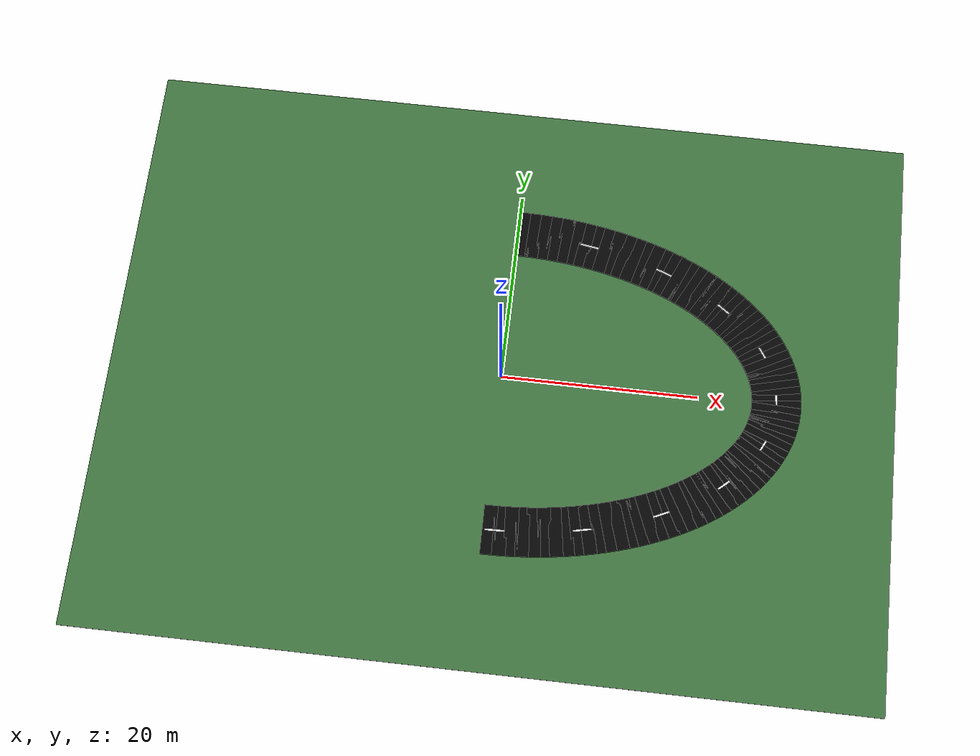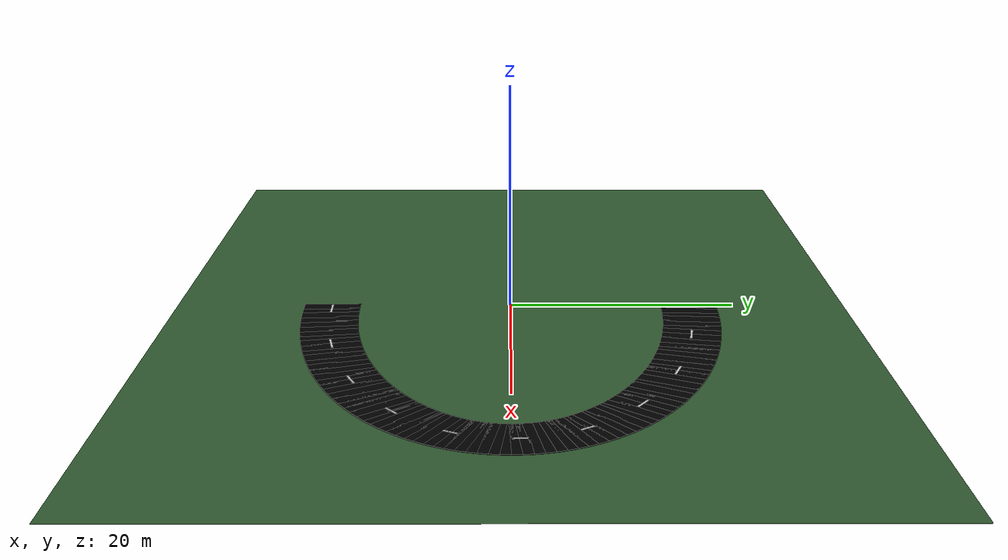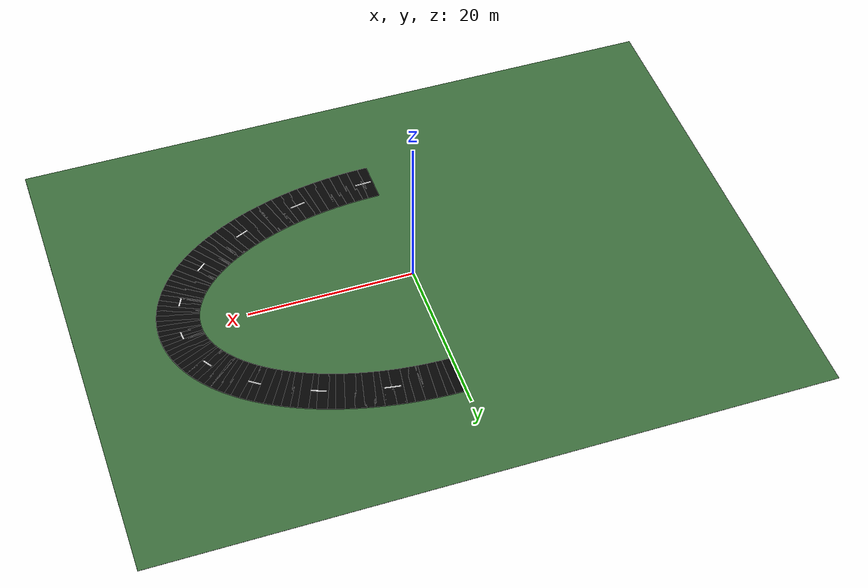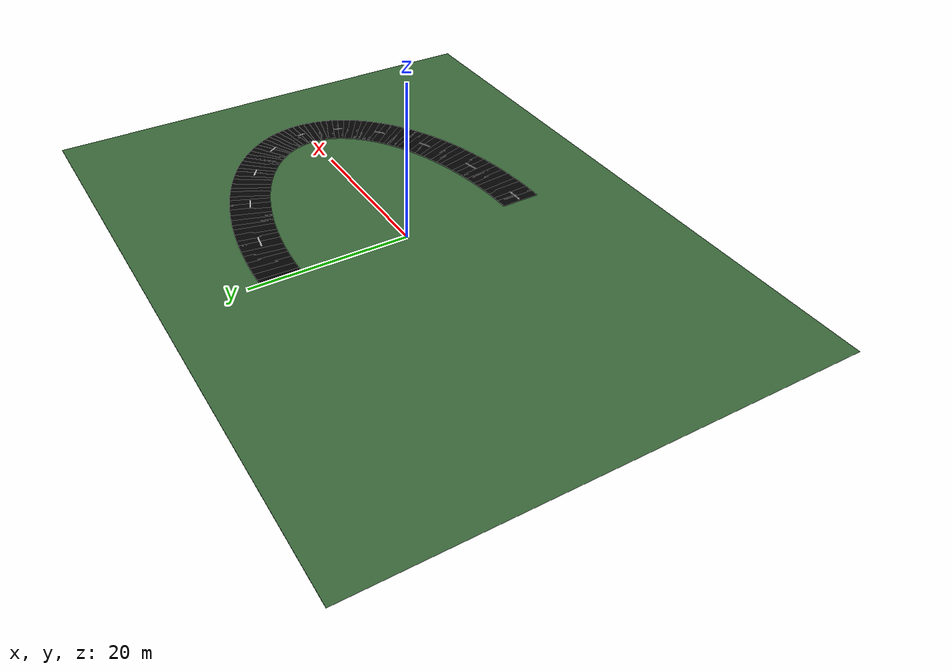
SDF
<sdf version="1.8">
 <world name="ellipse_road_world">
  <model name="ground">
   <static>true</static>
   <pose>0 0 -0.03 0 0 0</pose>
   <link name="link">
    <collision name="collision"><geometry><box><size>80 60 0.04</size></box></geometry></collision>
    <visual name="visual">
     <geometry><box><size>80 60 0.04</size></box></geometry>
     <material><ambient>0.25 0.45 0.25 1</ambient><diffuse>0.25 0.45 0.25 1</diffuse></material>
    </visual>
   </link>
  </model>
  <model name="road_segment_0">
   <static>true</static>
   <pose>27.989 0.314 0.02 0 0 1.605148</pose>
   <link name="link">
    <collision name="collision"><geometry><box><size>0.786 5.000 0.080</size></box></geometry></collision>
    <visual name="visual">
     <geometry><box><size>0.786 5.000 0.080</size></box></geometry>
     <material><ambient>0.02 0.02 0.02 1</ambient><diffuse>0.02 0.02 0.02 1</diffuse></material>
    </visual>
   </link>
  </model>
  <model name="road_segment_1">
   <static>true</static>
   <pose>27.946 0.942 0.02 0 0 1.673635</pose>
   <link name="link">
    <collision name="collision"><geometry><box><size>0.788 5.000 0.080</size></box></geometry></collision>
    <visual name="visual">
     <geometry><box><size>0.788 5.000 0.080</size></box></geometry>
     <material><ambient>0.02 0.02 0.02 1</ambient><diffuse>0.02 0.02 0.02 1</diffuse></material>
    </visual>
   </link>
  </model>
  <model name="road_segment_2">
   <static>true</static>
   <pose>27.860 1.568 0.02 0 0 1.741479</pose>
   <link name="link">
    <collision name="collision"><geometry><box><size>0.793 5.000 0.080</size></box></geometry></collision>
    <visual name="visual">
     <geometry><box><size>0.793 5.000 0.080</size></box></geometry>
     <material><ambient>0.02 0.02 0.02 1</ambient><diffuse>0.02 0.02 0.02 1</diffuse></material>
    </visual>
   </link>
  </model>
  <model name="road_segment_3">
   <static>true</static>
   <pose>27.731 2.192 0.02 0 0 1.808283</pose>
   <link name="link">
    <collision name="collision"><geometry><box><size>0.800 5.000 0.080</size></box></geometry></collision>
    <visual name="visual">
     <geometry><box><size>0.800 5.000 0.080</size></box></geometry>
     <material><ambient>0.02 0.02 0.02 1</ambient><diffuse>0.02 0.02 0.02 1</diffuse></material>
    </visual>
   </link>
  </model>
  <model name="road_segment_4">
   <static>true</static>
   <pose>27.559 2.812 0.02 0 0 1.873691</pose>
   <link name="link">
    <collision name="collision"><geometry><box><size>0.810 5.000 0.080</size></box></geometry></collision>
    <visual name="visual">
     <geometry><box><size>0.810 5.000 0.080</size></box></geometry>
     <material><ambient>0.02 0.02 0.02 1</ambient><diffuse>0.02 0.02 0.02 1</diffuse></material>
    </visual>
   </link>
  </model>
  <model name="road_segment_5">
   <static>true</static>
   <pose>27.344 3.428 0.02 0 0 1.937401</pose>
   <link name="link">
    <collision name="collision"><geometry><box><size>0.822 5.000 0.080</size></box></geometry></collision>
    <visual name="visual">
     <geometry><box><size>0.822 5.000 0.080</size></box></geometry>
     <material><ambient>0.02 0.02 0.02 1</ambient><diffuse>0.02 0.02 0.02 1</diffuse></material>
    </visual>
   </link>
  </model>
  <model name="road_segment_6">
   <static>true</static>
   <pose>27.088 4.039 0.02 0 0 1.999172</pose>
   <link name="link">
    <collision name="collision"><geometry><box><size>0.835 5.000 0.080</size></box></geometry></collision>
    <visual name="visual">
     <geometry><box><size>0.835 5.000 0.080</size></box></geometry>
     <material><ambient>0.02 0.02 0.02 1</ambient><diffuse>0.02 0.02 0.02 1</diffuse></material>
    </visual>
   </link>
  </model>
  <model name="road_segment_7">
   <static>true</static>
   <pose>26.789 4.644 0.02 0 0 2.058823</pose>
   <link name="link">
    <collision name="collision"><geometry><box><size>0.851 5.000 0.080</size></box></geometry></collision>
    <visual name="visual">
     <geometry><box><size>0.851 5.000 0.080</size></box></geometry>
     <material><ambient>0.02 0.02 0.02 1</ambient><diffuse>0.02 0.02 0.02 1</diffuse></material>
    </visual>
   </link>
  </model>
  <model name="road_segment_8">
   <static>true</static>
   <pose>26.449 5.241 0.02 0 0 2.116235</pose>
   <link name="link">
    <collision name="collision"><geometry><box><size>0.868 5.000 0.080</size></box></geometry></collision>
    <visual name="visual">
     <geometry><box><size>0.868 5.000 0.080</size></box></geometry>
     <material><ambient>0.02 0.02 0.02 1</ambient><diffuse>0.02 0.02 0.02 1</diffuse></material>
    </visual>
   </link>
  </model>
  <model name="road_segment_9">
   <static>true</static>
   <pose>26.069 5.830 0.02 0 0 2.171341</pose>
   <link name="link">
    <collision name="collision"><geometry><box><size>0.886 5.000 0.080</size></box></geometry></collision>
    <visual name="visual">
     <geometry><box><size>0.886 5.000 0.080</size></box></geometry>
     <material><ambient>0.02 0.02 0.02 1</ambient><diffuse>0.02 0.02 0.02 1</diffuse></material>
    </visual>
   </link>
  </model>
  <model name="road_segment_10">
   <static>true</static>
   <pose>25.648 6.411 0.02 0 0 2.224122</pose>
   <link name="link">
    <collision name="collision"><geometry><box><size>0.906 5.000 0.080</size></box></geometry></collision>
    <visual name="visual">
     <geometry><box><size>0.906 5.000 0.080</size></box></geometry>
     <material><ambient>0.02 0.02 0.02 1</ambient><diffuse>0.02 0.02 0.02 1</diffuse></material>
    </visual>
   </link>
  </model>
  <model name="road_segment_11">
   <static>true</static>
   <pose>25.188 6.981 0.02 0 0 2.274600</pose>
   <link name="link">
    <collision name="collision"><geometry><box><size>0.927 5.000 0.080</size></box></geometry></collision>
    <visual name="visual">
     <geometry><box><size>0.927 5.000 0.080</size></box></geometry>
     <material><ambient>0.02 0.02 0.02 1</ambient><diffuse>0.02 0.02 0.02 1</diffuse></material>
    </visual>
   </link>
  </model>
  <model name="road_segment_12">
   <static>true</static>
   <pose>24.689 7.541 0.02 0 0 2.322826</pose>
   <link name="link">
    <collision name="collision"><geometry><box><size>0.948 5.000 0.080</size></box></geometry></collision>
    <visual name="visual">
     <geometry><box><size>0.948 5.000 0.080</size></box></geometry>
     <material><ambient>0.02 0.02 0.02 1</ambient><diffuse>0.02 0.02 0.02 1</diffuse></material>
    </visual>
   </link>
  </model>
  <model name="road_segment_13">
   <static>true</static>
   <pose>24.152 8.089 0.02 0 0 2.368877</pose>
   <link name="link">
    <collision name="collision"><geometry><box><size>0.971 5.000 0.080</size></box></geometry></collision>
    <visual name="visual">
     <geometry><box><size>0.971 5.000 0.080</size></box></geometry>
     <material><ambient>0.02 0.02 0.02 1</ambient><diffuse>0.02 0.02 0.02 1</diffuse></material>
    </visual>
   </link>
  </model>
  <model name="road_segment_14">
   <static>true</static>
   <pose>23.578 8.625 0.02 0 0 2.412848</pose>
   <link name="link">
    <collision name="collision"><geometry><box><size>0.993 5.000 0.080</size></box></geometry></collision>
    <visual name="visual">
     <geometry><box><size>0.993 5.000 0.080</size></box></geometry>
     <material><ambient>0.02 0.02 0.02 1</ambient><diffuse>0.02 0.02 0.02 1</diffuse></material>
    </visual>
   </link>
  </model>
  <model name="road_segment_15">
   <static>true</static>
   <pose>22.967 9.147 0.02 0 0 2.454843</pose>
   <link name="link">
    <collision name="collision"><geometry><box><size>1.016 5.000 0.080</size></box></geometry></collision>
    <visual name="visual">
     <geometry><box><size>1.016 5.000 0.080</size></box></geometry>
     <material><ambient>0.02 0.02 0.02 1</ambient><diffuse>0.02 0.02 0.02 1</diffuse></material>
    </visual>
   </link>
  </model>
  <model name="road_segment_16">
   <static>true</static>
   <pose>22.321 9.655 0.02 0 0 2.494976</pose>
   <link name="link">
    <collision name="collision"><geometry><box><size>1.039 5.000 0.080</size></box></geometry></collision>
    <visual name="visual">
     <geometry><box><size>1.039 5.000 0.080</size></box></geometry>
     <material><ambient>0.02 0.02 0.02 1</ambient><diffuse>0.02 0.02 0.02 1</diffuse></material>
    </visual>
   </link>
  </model>
  <model name="road_segment_17">
   <static>true</static>
   <pose>21.640 10.148 0.02 0 0 2.533362</pose>
   <link name="link">
    <collision name="collision"><geometry><box><size>1.062 5.000 0.080</size></box></geometry></collision>
    <visual name="visual">
     <geometry><box><size>1.062 5.000 0.080</size></box></geometry>
     <material><ambient>0.02 0.02 0.02 1</ambient><diffuse>0.02 0.02 0.02 1</diffuse></material>
    </visual>
   </link>
  </model>
  <model name="road_segment_18">
   <static>true</static>
   <pose>20.926 10.626 0.02 0 0 2.570119</pose>
   <link name="link">
    <collision name="collision"><geometry><box><size>1.085 5.000 0.080</size></box></geometry></collision>
    <visual name="visual">
     <geometry><box><size>1.085 5.000 0.080</size></box></geometry>
     <material><ambient>0.02 0.02 0.02 1</ambient><diffuse>0.02 0.02 0.02 1</diffuse></material>
    </visual>
   </link>
  </model>
  <model name="road_segment_19">
   <static>true</static>
   <pose>20.180 11.087 0.02 0 0 2.605359</pose>
   <link name="link">
    <collision name="collision"><geometry><box><size>1.108 5.000 0.080</size></box></geometry></collision>
    <visual name="visual">
     <geometry><box><size>1.108 5.000 0.080</size></box></geometry>
     <material><ambient>0.02 0.02 0.02 1</ambient><diffuse>0.02 0.02 0.02 1</diffuse></material>
    </visual>
   </link>
  </model>
  <model name="road_segment_20">
   <static>true</static>
   <pose>19.403 11.531 0.02 0 0 2.639196</pose>
   <link name="link">
    <collision name="collision"><geometry><box><size>1.130 5.000 0.080</size></box></geometry></collision>
    <visual name="visual">
     <geometry><box><size>1.130 5.000 0.080</size></box></geometry>
     <material><ambient>0.02 0.02 0.02 1</ambient><diffuse>0.02 0.02 0.02 1</diffuse></material>
    </visual>
   </link>
  </model>
  <model name="road_segment_21">
   <static>true</static>
   <pose>18.595 11.958 0.02 0 0 2.671737</pose>
   <link name="link">
    <collision name="collision"><geometry><box><size>1.152 5.000 0.080</size></box></geometry></collision>
    <visual name="visual">
     <geometry><box><size>1.152 5.000 0.080</size></box></geometry>
     <material><ambient>0.02 0.02 0.02 1</ambient><diffuse>0.02 0.02 0.02 1</diffuse></material>
    </visual>
   </link>
  </model>
  <model name="road_segment_22">
   <static>true</static>
   <pose>17.760 12.366 0.02 0 0 2.703085</pose>
   <link name="link">
    <collision name="collision"><geometry><box><size>1.173 5.000 0.080</size></box></geometry></collision>
    <visual name="visual">
     <geometry><box><size>1.173 5.000 0.080</size></box></geometry>
     <material><ambient>0.02 0.02 0.02 1</ambient><diffuse>0.02 0.02 0.02 1</diffuse></material>
    </visual>
   </link>
  </model>
  <model name="road_segment_23">
   <static>true</static>
   <pose>16.896 12.755 0.02 0 0 2.733336</pose>
   <link name="link">
    <collision name="collision"><geometry><box><size>1.194 5.000 0.080</size></box></geometry></collision>
    <visual name="visual">
     <geometry><box><size>1.194 5.000 0.080</size></box></geometry>
     <material><ambient>0.02 0.02 0.02 1</ambient><diffuse>0.02 0.02 0.02 1</diffuse></material>
    </visual>
   </link>
  </model>
  <model name="road_segment_24">
   <static>true</static>
   <pose>16.007 13.124 0.02 0 0 2.762584</pose>
   <link name="link">
    <collision name="collision"><geometry><box><size>1.214 5.000 0.080</size></box></geometry></collision>
    <visual name="visual">
     <geometry><box><size>1.214 5.000 0.080</size></box></geometry>
     <material><ambient>0.02 0.02 0.02 1</ambient><diffuse>0.02 0.02 0.02 1</diffuse></material>
    </visual>
   </link>
  </model>
  <model name="road_segment_25">
   <static>true</static>
   <pose>15.093 13.473 0.02 0 0 2.790916</pose>
   <link name="link">
    <collision name="collision"><geometry><box><size>1.233 5.000 0.080</size></box></geometry></collision>
    <visual name="visual">
     <geometry><box><size>1.233 5.000 0.080</size></box></geometry>
     <material><ambient>0.02 0.02 0.02 1</ambient><diffuse>0.02 0.02 0.02 1</diffuse></material>
    </visual>
   </link>
  </model>
  <model name="road_segment_26">
   <static>true</static>
   <pose>14.156 13.801 0.02 0 0 2.818415</pose>
   <link name="link">
    <collision name="collision"><geometry><box><size>1.250 5.000 0.080</size></box></geometry></collision>
    <visual name="visual">
     <geometry><box><size>1.250 5.000 0.080</size></box></geometry>
     <material><ambient>0.02 0.02 0.02 1</ambient><diffuse>0.02 0.02 0.02 1</diffuse></material>
    </visual>
   </link>
  </model>
  <model name="road_segment_27">
   <static>true</static>
   <pose>13.197 14.108 0.02 0 0 2.845157</pose>
   <link name="link">
    <collision name="collision"><geometry><box><size>1.267 5.000 0.080</size></box></geometry></collision>
    <visual name="visual">
     <geometry><box><size>1.267 5.000 0.080</size></box></geometry>
     <material><ambient>0.02 0.02 0.02 1</ambient><diffuse>0.02 0.02 0.02 1</diffuse></material>
    </visual>
   </link>
  </model>
  <model name="road_segment_28">
   <static>true</static>
   <pose>12.217 14.393 0.02 0 0 2.871217</pose>
   <link name="link">
    <collision name="collision"><geometry><box><size>1.283 5.000 0.080</size></box></geometry></collision>
    <visual name="visual">
     <geometry><box><size>1.283 5.000 0.080</size></box></geometry>
     <material><ambient>0.02 0.02 0.02 1</ambient><diffuse>0.02 0.02 0.02 1</diffuse></material>
    </visual>
   </link>
  </model>
  <model name="road_segment_29">
   <static>true</static>
   <pose>11.219 14.656 0.02 0 0 2.896663</pose>
   <link name="link">
    <collision name="collision"><geometry><box><size>1.298 5.000 0.080</size></box></geometry></collision>
    <visual name="visual">
     <geometry><box><size>1.298 5.000 0.080</size></box></geometry>
     <material><ambient>0.02 0.02 0.02 1</ambient><diffuse>0.02 0.02 0.02 1</diffuse></material>
    </visual>
   </link>
  </model>
  <model name="road_segment_30">
   <static>true</static>
   <pose>10.203 14.897 0.02 0 0 2.921561</pose>
   <link name="link">
    <collision name="collision"><geometry><box><size>1.311 5.000 0.080</size></box></geometry></collision>
    <visual name="visual">
     <geometry><box><size>1.311 5.000 0.080</size></box></geometry>
     <material><ambient>0.02 0.02 0.02 1</ambient><diffuse>0.02 0.02 0.02 1</diffuse></material>
    </visual>
   </link>
  </model>
  <model name="road_segment_31">
   <static>true</static>
   <pose>9.172 15.114 0.02 0 0 2.945973</pose>
   <link name="link">
    <collision name="collision"><geometry><box><size>1.324 5.000 0.080</size></box></geometry></collision>
    <visual name="visual">
     <geometry><box><size>1.324 5.000 0.080</size></box></geometry>
     <material><ambient>0.02 0.02 0.02 1</ambient><diffuse>0.02 0.02 0.02 1</diffuse></material>
    </visual>
   </link>
  </model>
  <model name="road_segment_32">
   <static>true</static>
   <pose>8.126 15.308 0.02 0 0 2.969957</pose>
   <link name="link">
    <collision name="collision"><geometry><box><size>1.335 5.000 0.080</size></box></geometry></collision>
    <visual name="visual">
     <geometry><box><size>1.335 5.000 0.080</size></box></geometry>
     <material><ambient>0.02 0.02 0.02 1</ambient><diffuse>0.02 0.02 0.02 1</diffuse></material>
    </visual>
   </link>
  </model>
  <model name="road_segment_33">
   <static>true</static>
   <pose>7.068 15.479 0.02 0 0 2.993571</pose>
   <link name="link">
    <collision name="collision"><geometry><box><size>1.345 5.000 0.080</size></box></geometry></collision>
    <visual name="visual">
     <geometry><box><size>1.345 5.000 0.080</size></box></geometry>
     <material><ambient>0.02 0.02 0.02 1</ambient><diffuse>0.02 0.02 0.02 1</diffuse></material>
    </visual>
   </link>
  </model>
  <model name="road_segment_34">
   <static>true</static>
   <pose>5.999 15.625 0.02 0 0 3.016868</pose>
   <link name="link">
    <collision name="collision"><geometry><box><size>1.353 5.000 0.080</size></box></geometry></collision>
    <visual name="visual">
     <geometry><box><size>1.353 5.000 0.080</size></box></geometry>
     <material><ambient>0.02 0.02 0.02 1</ambient><diffuse>0.02 0.02 0.02 1</diffuse></material>
    </visual>
   </link>
  </model>
  <model name="road_segment_35">
   <static>true</static>
   <pose>4.921 15.748 0.02 0 0 3.039900</pose>
   <link name="link">
    <collision name="collision"><geometry><box><size>1.360 5.000 0.080</size></box></geometry></collision>
    <visual name="visual">
     <geometry><box><size>1.360 5.000 0.080</size></box></geometry>
     <material><ambient>0.02 0.02 0.02 1</ambient><diffuse>0.02 0.02 0.02 1</diffuse></material>
    </visual>
   </link>
  </model>
  <model name="road_segment_36">
   <static>true</static>
   <pose>3.836 15.846 0.02 0 0 3.062718</pose>
   <link name="link">
    <collision name="collision"><geometry><box><size>1.366 5.000 0.080</size></box></geometry></collision>
    <visual name="visual">
     <geometry><box><size>1.366 5.000 0.080</size></box></geometry>
     <material><ambient>0.02 0.02 0.02 1</ambient><diffuse>0.02 0.02 0.02 1</diffuse></material>
    </visual>
   </link>
  </model>
  <model name="road_segment_37">
   <static>true</static>
   <pose>2.744 15.920 0.02 0 0 3.085371</pose>
   <link name="link">
    <collision name="collision"><geometry><box><size>1.370 5.000 0.080</size></box></geometry></collision>
    <visual name="visual">
     <geometry><box><size>1.370 5.000 0.080</size></box></geometry>
     <material><ambient>0.02 0.02 0.02 1</ambient><diffuse>0.02 0.02 0.02 1</diffuse></material>
    </visual>
   </link>
  </model>
  <model name="road_segment_38">
   <static>true</static>
   <pose>1.648 15.969 0.02 0 0 3.107906</pose>
   <link name="link">
    <collision name="collision"><geometry><box><size>1.373 5.000 0.080</size></box></geometry></collision>
    <visual name="visual">
     <geometry><box><size>1.373 5.000 0.080</size></box></geometry>
     <material><ambient>0.02 0.02 0.02 1</ambient><diffuse>0.02 0.02 0.02 1</diffuse></material>
    </visual>
   </link>
  </model>
  <model name="road_segment_39">
   <static>true</static>
   <pose>0.550 15.994 0.02 0 0 3.130372</pose>
   <link name="link">
    <collision name="collision"><geometry><box><size>1.374 5.000 0.080</size></box></geometry></collision>
    <visual name="visual">
     <geometry><box><size>1.374 5.000 0.080</size></box></geometry>
     <material><ambient>0.02 0.02 0.02 1</ambient><diffuse>0.02 0.02 0.02 1</diffuse></material>
    </visual>
   </link>
  </model>
  <model name="road_segment_120">
   <static>true</static>
   <pose>0.550 -15.994 0.02 0 0 0.011221</pose>
   <link name="link">
    <collision name="collision"><geometry><box><size>1.374 5.000 0.080</size></box></geometry></collision>
    <visual name="visual">
     <geometry><box><size>1.374 5.000 0.080</size></box></geometry>
     <material><ambient>0.02 0.02 0.02 1</ambient><diffuse>0.02 0.02 0.02 1</diffuse></material>
    </visual>
   </link>
  </model>
  <model name="road_segment_121">
   <static>true</static>
   <pose>1.648 -15.969 0.02 0 0 0.033686</pose>
   <link name="link">
    <collision name="collision"><geometry><box><size>1.373 5.000 0.080</size></box></geometry></collision>
    <visual name="visual">
     <geometry><box><size>1.373 5.000 0.080</size></box></geometry>
     <material><ambient>0.02 0.02 0.02 1</ambient><diffuse>0.02 0.02 0.02 1</diffuse></material>
    </visual>
   </link>
  </model>
  <model name="road_segment_122">
   <static>true</static>
   <pose>2.744 -15.920 0.02 0 0 0.056221</pose>
   <link name="link">
    <collision name="collision"><geometry><box><size>1.370 5.000 0.080</size></box></geometry></collision>
    <visual name="visual">
     <geometry><box><size>1.370 5.000 0.080</size></box></geometry>
     <material><ambient>0.02 0.02 0.02 1</ambient><diffuse>0.02 0.02 0.02 1</diffuse></material>
    </visual>
   </link>
  </model>
  <model name="road_segment_123">
   <static>true</static>
   <pose>3.836 -15.846 0.02 0 0 0.078874</pose>
   <link name="link">
    <collision name="collision"><geometry><box><size>1.366 5.000 0.080</size></box></geometry></collision>
    <visual name="visual">
     <geometry><box><size>1.366 5.000 0.080</size></box></geometry>
     <material><ambient>0.02 0.02 0.02 1</ambient><diffuse>0.02 0.02 0.02 1</diffuse></material>
    </visual>
   </link>
  </model>
  <model name="road_segment_124">
   <static>true</static>
   <pose>4.921 -15.748 0.02 0 0 0.101692</pose>
   <link name="link">
    <collision name="collision"><geometry><box><size>1.360 5.000 0.080</size></box></geometry></collision>
    <visual name="visual">
     <geometry><box><size>1.360 5.000 0.080</size></box></geometry>
     <material><ambient>0.02 0.02 0.02 1</ambient><diffuse>0.02 0.02 0.02 1</diffuse></material>
    </visual>
   </link>
  </model>
  <model name="road_segment_125">
   <static>true</static>
   <pose>5.999 -15.625 0.02 0 0 0.124725</pose>
   <link name="link">
    <collision name="collision"><geometry><box><size>1.353 5.000 0.080</size></box></geometry></collision>
    <visual name="visual">
     <geometry><box><size>1.353 5.000 0.080</size></box></geometry>
     <material><ambient>0.02 0.02 0.02 1</ambient><diffuse>0.02 0.02 0.02 1</diffuse></material>
    </visual>
   </link>
  </model>
  <model name="road_segment_126">
   <static>true</static>
   <pose>7.068 -15.479 0.02 0 0 0.148022</pose>
   <link name="link">
    <collision name="collision"><geometry><box><size>1.345 5.000 0.080</size></box></geometry></collision>
    <visual name="visual">
     <geometry><box><size>1.345 5.000 0.080</size></box></geometry>
     <material><ambient>0.02 0.02 0.02 1</ambient><diffuse>0.02 0.02 0.02 1</diffuse></material>
    </visual>
   </link>
  </model>
  <model name="road_segment_127">
   <static>true</static>
   <pose>8.126 -15.308 0.02 0 0 0.171635</pose>
   <link name="link">
    <collision name="collision"><geometry><box><size>1.335 5.000 0.080</size></box></geometry></collision>
    <visual name="visual">
     <geometry><box><size>1.335 5.000 0.080</size></box></geometry>
     <material><ambient>0.02 0.02 0.02 1</ambient><diffuse>0.02 0.02 0.02 1</diffuse></material>
    </visual>
   </link>
  </model>
  <model name="road_segment_128">
   <static>true</static>
   <pose>9.172 -15.114 0.02 0 0 0.195620</pose>
   <link name="link">
    <collision name="collision"><geometry><box><size>1.324 5.000 0.080</size></box></geometry></collision>
    <visual name="visual">
     <geometry><box><size>1.324 5.000 0.080</size></box></geometry>
     <material><ambient>0.02 0.02 0.02 1</ambient><diffuse>0.02 0.02 0.02 1</diffuse></material>
    </visual>
   </link>
  </model>
  <model name="road_segment_129">
   <static>true</static>
   <pose>10.203 -14.897 0.02 0 0 0.220032</pose>
   <link name="link">
    <collision name="collision"><geometry><box><size>1.311 5.000 0.080</size></box></geometry></collision>
    <visual name="visual">
     <geometry><box><size>1.311 5.000 0.080</size></box></geometry>
     <material><ambient>0.02 0.02 0.02 1</ambient><diffuse>0.02 0.02 0.02 1</diffuse></material>
    </visual>
   </link>
  </model>
  <model name="road_segment_130">
   <static>true</static>
   <pose>11.219 -14.656 0.02 0 0 0.244930</pose>
   <link name="link">
    <collision name="collision"><geometry><box><size>1.298 5.000 0.080</size></box></geometry></collision>
    <visual name="visual">
     <geometry><box><size>1.298 5.000 0.080</size></box></geometry>
     <material><ambient>0.02 0.02 0.02 1</ambient><diffuse>0.02 0.02 0.02 1</diffuse></material>
    </visual>
   </link>
  </model>
  <model name="road_segment_131">
   <static>true</static>
   <pose>12.217 -14.393 0.02 0 0 0.270376</pose>
   <link name="link">
    <collision name="collision"><geometry><box><size>1.283 5.000 0.080</size></box></geometry></collision>
    <visual name="visual">
     <geometry><box><size>1.283 5.000 0.080</size></box></geometry>
     <material><ambient>0.02 0.02 0.02 1</ambient><diffuse>0.02 0.02 0.02 1</diffuse></material>
    </visual>
   </link>
  </model>
  <model name="road_segment_132">
   <static>true</static>
   <pose>13.197 -14.108 0.02 0 0 0.296435</pose>
   <link name="link">
    <collision name="collision"><geometry><box><size>1.267 5.000 0.080</size></box></geometry></collision>
    <visual name="visual">
     <geometry><box><size>1.267 5.000 0.080</size></box></geometry>
     <material><ambient>0.02 0.02 0.02 1</ambient><diffuse>0.02 0.02 0.02 1</diffuse></material>
    </visual>
   </link>
  </model>
  <model name="road_segment_133">
   <static>true</static>
   <pose>14.156 -13.801 0.02 0 0 0.323178</pose>
   <link name="link">
    <collision name="collision"><geometry><box><size>1.250 5.000 0.080</size></box></geometry></collision>
    <visual name="visual">
     <geometry><box><size>1.250 5.000 0.080</size></box></geometry>
     <material><ambient>0.02 0.02 0.02 1</ambient><diffuse>0.02 0.02 0.02 1</diffuse></material>
    </visual>
   </link>
  </model>
  <model name="road_segment_134">
   <static>true</static>
   <pose>15.093 -13.473 0.02 0 0 0.350676</pose>
   <link name="link">
    <collision name="collision"><geometry><box><size>1.233 5.000 0.080</size></box></geometry></collision>
    <visual name="visual">
     <geometry><box><size>1.233 5.000 0.080</size></box></geometry>
     <material><ambient>0.02 0.02 0.02 1</ambient><diffuse>0.02 0.02 0.02 1</diffuse></material>
    </visual>
   </link>
  </model>
  <model name="road_segment_135">
   <static>true</static>
   <pose>16.007 -13.124 0.02 0 0 0.379009</pose>
   <link name="link">
    <collision name="collision"><geometry><box><size>1.214 5.000 0.080</size></box></geometry></collision>
    <visual name="visual">
     <geometry><box><size>1.214 5.000 0.080</size></box></geometry>
     <material><ambient>0.02 0.02 0.02 1</ambient><diffuse>0.02 0.02 0.02 1</diffuse></material>
    </visual>
   </link>
  </model>
  <model name="road_segment_136">
   <static>true</static>
   <pose>16.896 -12.755 0.02 0 0 0.408257</pose>
   <link name="link">
    <collision name="collision"><geometry><box><size>1.194 5.000 0.080</size></box></geometry></collision>
    <visual name="visual">
     <geometry><box><size>1.194 5.000 0.080</size></box></geometry>
     <material><ambient>0.02 0.02 0.02 1</ambient><diffuse>0.02 0.02 0.02 1</diffuse></material>
    </visual>
   </link>
  </model>
  <model name="road_segment_137">
   <static>true</static>
   <pose>17.760 -12.366 0.02 0 0 0.438508</pose>
   <link name="link">
    <collision name="collision"><geometry><box><size>1.173 5.000 0.080</size></box></geometry></collision>
    <visual name="visual">
     <geometry><box><size>1.173 5.000 0.080</size></box></geometry>
     <material><ambient>0.02 0.02 0.02 1</ambient><diffuse>0.02 0.02 0.02 1</diffuse></material>
    </visual>
   </link>
  </model>
  <model name="road_segment_138">
   <static>true</static>
   <pose>18.595 -11.958 0.02 0 0 0.469855</pose>
   <link name="link">
    <collision name="collision"><geometry><box><size>1.152 5.000 0.080</size></box></geometry></collision>
    <visual name="visual">
     <geometry><box><size>1.152 5.000 0.080</size></box></geometry>
     <material><ambient>0.02 0.02 0.02 1</ambient><diffuse>0.02 0.02 0.02 1</diffuse></material>
    </visual>
   </link>
  </model>
  <model name="road_segment_139">
   <static>true</static>
   <pose>19.403 -11.531 0.02 0 0 0.502396</pose>
   <link name="link">
    <collision name="collision"><geometry><box><size>1.130 5.000 0.080</size></box></geometry></collision>
    <visual name="visual">
     <geometry><box><size>1.130 5.000 0.080</size></box></geometry>
     <material><ambient>0.02 0.02 0.02 1</ambient><diffuse>0.02 0.02 0.02 1</diffuse></material>
    </visual>
   </link>
  </model>
  <model name="road_segment_140">
   <static>true</static>
   <pose>20.180 -11.087 0.02 0 0 0.536233</pose>
   <link name="link">
    <collision name="collision"><geometry><box><size>1.108 5.000 0.080</size></box></geometry></collision>
    <visual name="visual">
     <geometry><box><size>1.108 5.000 0.080</size></box></geometry>
     <material><ambient>0.02 0.02 0.02 1</ambient><diffuse>0.02 0.02 0.02 1</diffuse></material>
    </visual>
   </link>
  </model>
  <model name="road_segment_141">
   <static>true</static>
   <pose>20.926 -10.626 0.02 0 0 0.571474</pose>
   <link name="link">
    <collision name="collision"><geometry><box><size>1.085 5.000 0.080</size></box></geometry></collision>
    <visual name="visual">
     <geometry><box><size>1.085 5.000 0.080</size></box></geometry>
     <material><ambient>0.02 0.02 0.02 1</ambient><diffuse>0.02 0.02 0.02 1</diffuse></material>
    </visual>
   </link>
  </model>
  <model name="road_segment_142">
   <static>true</static>
   <pose>21.640 -10.148 0.02 0 0 0.608230</pose>
   <link name="link">
    <collision name="collision"><geometry><box><size>1.062 5.000 0.080</size></box></geometry></collision>
    <visual name="visual">
     <geometry><box><size>1.062 5.000 0.080</size></box></geometry>
     <material><ambient>0.02 0.02 0.02 1</ambient><diffuse>0.02 0.02 0.02 1</diffuse></material>
    </visual>
   </link>
  </model>
  <model name="road_segment_143">
   <static>true</static>
   <pose>22.321 -9.655 0.02 0 0 0.646616</pose>
   <link name="link">
    <collision name="collision"><geometry><box><size>1.039 5.000 0.080</size></box></geometry></collision>
    <visual name="visual">
     <geometry><box><size>1.039 5.000 0.080</size></box></geometry>
     <material><ambient>0.02 0.02 0.02 1</ambient><diffuse>0.02 0.02 0.02 1</diffuse></material>
    </visual>
   </link>
  </model>
  <model name="road_segment_144">
   <static>true</static>
   <pose>22.967 -9.147 0.02 0 0 0.686749</pose>
   <link name="link">
    <collision name="collision"><geometry><box><size>1.016 5.000 0.080</size></box></geometry></collision>
    <visual name="visual">
     <geometry><box><size>1.016 5.000 0.080</size></box></geometry>
     <material><ambient>0.02 0.02 0.02 1</ambient><diffuse>0.02 0.02 0.02 1</diffuse></material>
    </visual>
   </link>
  </model>
  <model name="road_segment_145">
   <static>true</static>
   <pose>23.578 -8.625 0.02 0 0 0.728745</pose>
   <link name="link">
    <collision name="collision"><geometry><box><size>0.993 5.000 0.080</size></box></geometry></collision>
    <visual name="visual">
     <geometry><box><size>0.993 5.000 0.080</size></box></geometry>
     <material><ambient>0.02 0.02 0.02 1</ambient><diffuse>0.02 0.02 0.02 1</diffuse></material>
    </visual>
   </link>
  </model>
  <model name="road_segment_146">
   <static>true</static>
   <pose>24.152 -8.089 0.02 0 0 0.772715</pose>
   <link name="link">
    <collision name="collision"><geometry><box><size>0.971 5.000 0.080</size></box></geometry></collision>
    <visual name="visual">
     <geometry><box><size>0.971 5.000 0.080</size></box></geometry>
     <material><ambient>0.02 0.02 0.02 1</ambient><diffuse>0.02 0.02 0.02 1</diffuse></material>
    </visual>
   </link>
  </model>
  <model name="road_segment_147">
   <static>true</static>
   <pose>24.689 -7.541 0.02 0 0 0.818767</pose>
   <link name="link">
    <collision name="collision"><geometry><box><size>0.948 5.000 0.080</size></box></geometry></collision>
    <visual name="visual">
     <geometry><box><size>0.948 5.000 0.080</size></box></geometry>
     <material><ambient>0.02 0.02 0.02 1</ambient><diffuse>0.02 0.02 0.02 1</diffuse></material>
    </visual>
   </link>
  </model>
  <model name="road_segment_148">
   <static>true</static>
   <pose>25.188 -6.981 0.02 0 0 0.866993</pose>
   <link name="link">
    <collision name="collision"><geometry><box><size>0.927 5.000 0.080</size></box></geometry></collision>
    <visual name="visual">
     <geometry><box><size>0.927 5.000 0.080</size></box></geometry>
     <material><ambient>0.02 0.02 0.02 1</ambient><diffuse>0.02 0.02 0.02 1</diffuse></material>
    </visual>
   </link>
  </model>
  <model name="road_segment_149">
   <static>true</static>
   <pose>25.648 -6.411 0.02 0 0 0.917470</pose>
   <link name="link">
    <collision name="collision"><geometry><box><size>0.906 5.000 0.080</size></box></geometry></collision>
    <visual name="visual">
     <geometry><box><size>0.906 5.000 0.080</size></box></geometry>
     <material><ambient>0.02 0.02 0.02 1</ambient><diffuse>0.02 0.02 0.02 1</diffuse></material>
    </visual>
   </link>
  </model>
  <model name="road_segment_150">
   <static>true</static>
   <pose>26.069 -5.830 0.02 0 0 0.970252</pose>
   <link name="link">
    <collision name="collision"><geometry><box><size>0.886 5.000 0.080</size></box></geometry></collision>
    <visual name="visual">
     <geometry><box><size>0.886 5.000 0.080</size></box></geometry>
     <material><ambient>0.02 0.02 0.02 1</ambient><diffuse>0.02 0.02 0.02 1</diffuse></material>
    </visual>
   </link>
  </model>
  <model name="road_segment_151">
   <static>true</static>
   <pose>26.449 -5.241 0.02 0 0 1.025357</pose>
   <link name="link">
    <collision name="collision"><geometry><box><size>0.868 5.000 0.080</size></box></geometry></collision>
    <visual name="visual">
     <geometry><box><size>0.868 5.000 0.080</size></box></geometry>
     <material><ambient>0.02 0.02 0.02 1</ambient><diffuse>0.02 0.02 0.02 1</diffuse></material>
    </visual>
   </link>
  </model>
  <model name="road_segment_152">
   <static>true</static>
   <pose>26.789 -4.644 0.02 0 0 1.082769</pose>
   <link name="link">
    <collision name="collision"><geometry><box><size>0.851 5.000 0.080</size></box></geometry></collision>
    <visual name="visual">
     <geometry><box><size>0.851 5.000 0.080</size></box></geometry>
     <material><ambient>0.02 0.02 0.02 1</ambient><diffuse>0.02 0.02 0.02 1</diffuse></material>
    </visual>
   </link>
  </model>
  <model name="road_segment_153">
   <static>true</static>
   <pose>27.088 -4.039 0.02 0 0 1.142421</pose>
   <link name="link">
    <collision name="collision"><geometry><box><size>0.835 5.000 0.080</size></box></geometry></collision>
    <visual name="visual">
     <geometry><box><size>0.835 5.000 0.080</size></box></geometry>
     <material><ambient>0.02 0.02 0.02 1</ambient><diffuse>0.02 0.02 0.02 1</diffuse></material>
    </visual>
   </link>
  </model>
  <model name="road_segment_154">
   <static>true</static>
   <pose>27.344 -3.428 0.02 0 0 1.204192</pose>
   <link name="link">
    <collision name="collision"><geometry><box><size>0.822 5.000 0.080</size></box></geometry></collision>
    <visual name="visual">
     <geometry><box><size>0.822 5.000 0.080</size></box></geometry>
     <material><ambient>0.02 0.02 0.02 1</ambient><diffuse>0.02 0.02 0.02 1</diffuse></material>
    </visual>
   </link>
  </model>
  <model name="road_segment_155">
   <static>true</static>
   <pose>27.559 -2.812 0.02 0 0 1.267902</pose>
   <link name="link">
    <collision name="collision"><geometry><box><size>0.810 5.000 0.080</size></box></geometry></collision>
    <visual name="visual">
     <geometry><box><size>0.810 5.000 0.080</size></box></geometry>
     <material><ambient>0.02 0.02 0.02 1</ambient><diffuse>0.02 0.02 0.02 1</diffuse></material>
    </visual>
   </link>
  </model>
  <model name="road_segment_156">
   <static>true</static>
   <pose>27.731 -2.192 0.02 0 0 1.333310</pose>
   <link name="link">
    <collision name="collision"><geometry><box><size>0.800 5.000 0.080</size></box></geometry></collision>
    <visual name="visual">
     <geometry><box><size>0.800 5.000 0.080</size></box></geometry>
     <material><ambient>0.02 0.02 0.02 1</ambient><diffuse>0.02 0.02 0.02 1</diffuse></material>
    </visual>
   </link>
  </model>
  <model name="road_segment_157">
   <static>true</static>
   <pose>27.860 -1.568 0.02 0 0 1.400113</pose>
   <link name="link">
    <collision name="collision"><geometry><box><size>0.793 5.000 0.080</size></box></geometry></collision>
    <visual name="visual">
     <geometry><box><size>0.793 5.000 0.080</size></box></geometry>
     <material><ambient>0.02 0.02 0.02 1</ambient><diffuse>0.02 0.02 0.02 1</diffuse></material>
    </visual>
   </link>
  </model>
  <model name="road_segment_158">
   <static>true</static>
   <pose>27.946 -0.942 0.02 0 0 1.467958</pose>
   <link name="link">
    <collision name="collision"><geometry><box><size>0.788 5.000 0.080</size></box></geometry></collision>
    <visual name="visual">
     <geometry><box><size>0.788 5.000 0.080</size></box></geometry>
     <material><ambient>0.02 0.02 0.02 1</ambient><diffuse>0.02 0.02 0.02 1</diffuse></material>
    </visual>
   </link>
  </model>
  <model name="road_segment_159">
   <static>true</static>
   <pose>27.989 -0.314 0.02 0 0 1.536444</pose>
   <link name="link">
    <collision name="collision"><geometry><box><size>0.786 5.000 0.080</size></box></geometry></collision>
    <visual name="visual">
     <geometry><box><size>0.786 5.000 0.080</size></box></geometry>
     <material><ambient>0.02 0.02 0.02 1</ambient><diffuse>0.02 0.02 0.02 1</diffuse></material>
    </visual>
   </link>
  </model>
  <model name="center_dash_0">
   <static>true</static>
   <pose>27.957 0.628 0.085 0 0 1.639446</pose>
   <link name="link">
    <visual name="visual">
     <geometry><box><size>1.132 0.18 0.015</size></box></geometry>
     <material><ambient>1 1 1 1</ambient><diffuse>1 1 1 1</diffuse></material>
    </visual>
   </link>
  </model>
  <model name="center_dash_8">
   <static>true</static>
   <pose>26.249 5.534 0.085 0 0 2.144079</pose>
   <link name="link">
    <visual name="visual">
     <geometry><box><size>1.263 0.18 0.015</size></box></geometry>
     <material><ambient>1 1 1 1</ambient><diffuse>1 1 1 1</diffuse></material>
    </visual>
   </link>
  </model>
  <model name="center_dash_16">
   <static>true</static>
   <pose>21.972 9.898 0.085 0 0 2.514380</pose>
   <link name="link">
    <visual name="visual">
     <geometry><box><size>1.513 0.18 0.015</size></box></geometry>
     <material><ambient>1 1 1 1</ambient><diffuse>1 1 1 1</diffuse></material>
    </visual>
   </link>
  </model>
  <model name="center_dash_24">
   <static>true</static>
   <pose>15.544 13.293 0.085 0 0 2.776859</pose>
   <link name="link">
    <visual name="visual">
     <geometry><box><size>1.761 0.18 0.015</size></box></geometry>
     <material><ambient>1 1 1 1</ambient><diffuse>1 1 1 1</diffuse></material>
    </visual>
   </link>
  </model>
  <model name="center_dash_32">
   <static>true</static>
   <pose>7.594 15.387 0.085 0 0 2.981807</pose>
   <link name="link">
    <visual name="visual">
     <geometry><box><size>1.929 0.18 0.015</size></box></geometry>
     <material><ambient>1 1 1 1</ambient><diffuse>1 1 1 1</diffuse></material>
    </visual>
   </link>
  </model>
  <model name="center_dash_120">
   <static>true</static>
   <pose>1.098 -15.975 0.085 0 0 0.022448</pose>
   <link name="link">
    <visual name="visual">
     <geometry><box><size>1.978 0.18 0.015</size></box></geometry>
     <material><ambient>1 1 1 1</ambient><diffuse>1 1 1 1</diffuse></material>
    </visual>
   </link>
  </model>
  <model name="center_dash_128">
   <static>true</static>
   <pose>9.684 -14.999 0.085 0 0 0.207769</pose>
   <link name="link">
    <visual name="visual">
     <geometry><box><size>1.897 0.18 0.015</size></box></geometry>
     <material><ambient>1 1 1 1</ambient><diffuse>1 1 1 1</diffuse></material>
    </visual>
   </link>
  </model>
  <model name="center_dash_136">
   <static>true</static>
   <pose>17.321 -12.555 0.085 0 0 0.423251</pose>
   <link name="link">
    <visual name="visual">
     <geometry><box><size>1.704 0.18 0.015</size></box></geometry>
     <material><ambient>1 1 1 1</ambient><diffuse>1 1 1 1</diffuse></material>
    </visual>
   </link>
  </model>
  <model name="center_dash_144">
   <static>true</static>
   <pose>23.263 -8.882 0.085 0 0 0.707507</pose>
   <link name="link">
    <visual name="visual">
     <geometry><box><size>1.446 0.18 0.015</size></box></geometry>
     <material><ambient>1 1 1 1</ambient><diffuse>1 1 1 1</diffuse></material>
    </visual>
   </link>
  </model>
  <model name="center_dash_152">
   <static>true</static>
   <pose>26.928 -4.340 0.085 0 0 1.112321</pose>
   <link name="link">
    <visual name="visual">
     <geometry><box><size>1.214 0.18 0.015</size></box></geometry>
     <material><ambient>1 1 1 1</ambient><diffuse>1 1 1 1</diffuse></material>
    </visual>
   </link>
  </model>
 </world>
</sdf>
